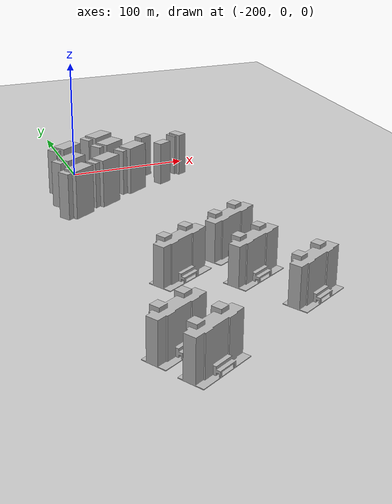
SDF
<sdf version="1.7">
 <world name="default">
  <model name="ground_plane">
   <static>1</static>
   <link name="link">
    <collision name="collision">
     <geometry><plane><normal>0 0 1</normal><size>100 100</size></plane></geometry>
     <surface><friction><ode><mu>100</mu><mu2>50</mu2></ode></friction></surface>
    </collision>
    <visual name="visual">
     <cast_shadows>0</cast_shadows>
     <geometry><plane><normal>0 0 1</normal><size>100 100</size></plane></geometry>
     <material>
      <script><uri>file://media/materials/scripts/gazebo.material</uri><name>Gazebo/Grey</name></script>
     </material>
    </visual>
   </link>
  </model>
  <model name="apartment0_0_clone">
   <static>1</static>
   <link name="link_0">
    <inertial>
     <mass>1</mass>
     <inertia>
      <ixx>0.166667</ixx>
      <ixy>0</ixy>
      <ixz>0</ixz>
      <iyy>0.166667</iyy>
      <iyz>0</iyz>
      <izz>0.166667</izz>
     </inertia>
    </inertial>
    <pose>0.000226 2e-06 0 0 -0 0</pose>
    <visual name="visual">
     <geometry>
      <mesh><uri>model://apartment0/scripts/apartment.dae</uri><scale>0.6 0.3 0.2</scale></mesh>
     </geometry>
     <material>
      <lighting>1</lighting>
      <script><uri>model://apartment0/scripts/building.jpg</uri><name>__default__</name></script>
      <shader type="pixel"/>
     </material>
    </visual>
    <collision name="collision">
     <geometry>
      <mesh><uri>model://apartment0/scripts/apartment.dae</uri><scale>0.6 0.3 0.2</scale></mesh>
     </geometry>
     <surface>
      <friction>
       <ode><mu>1</mu><mu2>1</mu2><fdir1>0 0 0</fdir1><slip1>0</slip1><slip2>0</slip2></ode>
       <torsional>
        <coefficient>1</coefficient>
        <patch_radius>0</patch_radius>
        <surface_radius>0</surface_radius>
        <use_patch_radius>1</use_patch_radius>
        <ode><slip>0</slip></ode>
       </torsional>
      </friction>
      <bounce><restitution_coefficient>0</restitution_coefficient><threshold>1e+06</threshold></bounce>
      <contact>
       <collide_without_contact>0</collide_without_contact>
       <collide_without_contact_bitmask>1</collide_without_contact_bitmask>
       <collide_bitmask>1</collide_bitmask>
       <ode>
        <soft_cfm>0</soft_cfm>
        <soft_erp>0.2</soft_erp>
        <kp>1e+13</kp>
        <kd>1</kd>
        <max_vel>0.01</max_vel>
        <min_depth>0</min_depth>
       </ode>
       <bullet>
        <split_impulse>1</split_impulse>
        <split_impulse_penetration_threshold>-0.01</split_impulse_penetration_threshold>
        <soft_cfm>0</soft_cfm>
        <soft_erp>0.2</soft_erp>
        <kp>1e+13</kp>
        <kd>1</kd>
       </bullet>
      </contact>
     </surface>
    </collision>
   </link>
   <static>0</static>
   <pose>-184.133 -215.894 1.01682 0 -0 0.518792</pose>
  </model>
  <model name="apartment0_0_clone_clone_clone_clone">
   <static>1</static>
   <link name="link_0">
    <inertial>
     <mass>1</mass>
     <inertia>
      <ixx>0.166667</ixx>
      <ixy>0</ixy>
      <ixz>0</ixz>
      <iyy>0.166667</iyy>
      <iyz>0</iyz>
      <izz>0.166667</izz>
     </inertia>
    </inertial>
    <pose>0.000226 2e-06 0 0 -0 0</pose>
    <visual name="visual">
     <geometry>
      <mesh><uri>model://apartment0/scripts/apartment.dae</uri><scale>0.6 0.3 0.2</scale></mesh>
     </geometry>
     <material>
      <lighting>1</lighting>
      <script><uri>model://apartment0/scripts/building.jpg</uri><name>__default__</name></script>
      <shader type="pixel"/>
     </material>
    </visual>
    <collision name="collision">
     <geometry>
      <mesh><uri>model://apartment0/scripts/apartment.dae</uri><scale>0.6 0.3 0.2</scale></mesh>
     </geometry>
     <surface>
      <friction>
       <ode><mu>1</mu><mu2>1</mu2><fdir1>0 0 0</fdir1><slip1>0</slip1><slip2>0</slip2></ode>
       <torsional>
        <coefficient>1</coefficient>
        <patch_radius>0</patch_radius>
        <surface_radius>0</surface_radius>
        <use_patch_radius>1</use_patch_radius>
        <ode><slip>0</slip></ode>
       </torsional>
      </friction>
      <bounce><restitution_coefficient>0</restitution_coefficient><threshold>1e+06</threshold></bounce>
      <contact>
       <collide_without_contact>0</collide_without_contact>
       <collide_without_contact_bitmask>1</collide_without_contact_bitmask>
       <collide_bitmask>1</collide_bitmask>
       <ode>
        <soft_cfm>0</soft_cfm>
        <soft_erp>0.2</soft_erp>
        <kp>1e+13</kp>
        <kd>1</kd>
        <max_vel>0.01</max_vel>
        <min_depth>0</min_depth>
       </ode>
       <bullet>
        <split_impulse>1</split_impulse>
        <split_impulse_penetration_threshold>-0.01</split_impulse_penetration_threshold>
        <soft_cfm>0</soft_cfm>
        <soft_erp>0.2</soft_erp>
        <kp>1e+13</kp>
        <kd>1</kd>
       </bullet>
      </contact>
     </surface>
    </collision>
   </link>
   <static>0</static>
   <pose>-112.725 -273.503 1.01682 0 -0 0.510126</pose>
  </model>
  <model name="apartment1_1_clone_clone_2_clone_5">
   <static>1</static>
   <link name="link_0">
    <inertial>
     <mass>1</mass>
     <inertia>
      <ixx>0.166667</ixx>
      <ixy>0</ixy>
      <ixz>0</ixz>
      <iyy>0.166667</iyy>
      <iyz>0</iyz>
      <izz>0.166667</izz>
     </inertia>
    </inertial>
    <pose>1e-06 -0 0 0 -0 0</pose>
    <visual name="visual">
     <geometry>
      <mesh><uri>model://apartment1/scripts/apartment1.dae</uri><scale>0.2 0.2 0.3</scale></mesh>
     </geometry>
     <material>
      <lighting>1</lighting>
      <script><uri>model://apartment1/scripts/apartment1.jpg</uri><name>__default__</name></script>
      <shader type="pixel"/>
     </material>
    </visual>
    <collision name="collision">
     <geometry>
      <mesh><uri>model://apartment1/scripts/apartment1.dae</uri><scale>0.2 0.2 0.3</scale></mesh>
     </geometry>
     <surface>
      <friction>
       <ode><mu>1</mu><mu2>1</mu2><fdir1>0 0 0</fdir1><slip1>0</slip1><slip2>0</slip2></ode>
       <torsional>
        <coefficient>1</coefficient>
        <patch_radius>0</patch_radius>
        <surface_radius>0</surface_radius>
        <use_patch_radius>1</use_patch_radius>
        <ode><slip>0</slip></ode>
       </torsional>
      </friction>
      <bounce><restitution_coefficient>0</restitution_coefficient><threshold>1e+06</threshold></bounce>
      <contact>
       <collide_without_contact>0</collide_without_contact>
       <collide_without_contact_bitmask>1</collide_without_contact_bitmask>
       <collide_bitmask>1</collide_bitmask>
       <ode>
        <soft_cfm>0</soft_cfm>
        <soft_erp>0.2</soft_erp>
        <kp>1e+13</kp>
        <kd>1</kd>
        <max_vel>0.01</max_vel>
        <min_depth>0</min_depth>
       </ode>
       <bullet>
        <split_impulse>1</split_impulse>
        <split_impulse_penetration_threshold>-0.01</split_impulse_penetration_threshold>
        <soft_cfm>0</soft_cfm>
        <soft_erp>0.2</soft_erp>
        <kp>1e+13</kp>
        <kd>1</kd>
       </bullet>
      </contact>
     </surface>
    </collision>
   </link>
   <static>0</static>
   <pose>-112.648 -24.5191 0 0 -0 0.45325</pose>
  </model>
  <model name="apartment1_1_clone_clone_2_clone_5_clone_4">
   <static>1</static>
   <link name="link_0">
    <inertial>
     <mass>1</mass>
     <inertia>
      <ixx>0.166667</ixx>
      <ixy>0</ixy>
      <ixz>0</ixz>
      <iyy>0.166667</iyy>
      <iyz>0</iyz>
      <izz>0.166667</izz>
     </inertia>
    </inertial>
    <pose>1e-06 -0 0 0 -0 0</pose>
    <visual name="visual">
     <geometry>
      <mesh><uri>model://apartment1/scripts/apartment1.dae</uri><scale>0.2 0.2 0.3</scale></mesh>
     </geometry>
     <material>
      <lighting>1</lighting>
      <script><uri>model://apartment1/scripts/apartment1.jpg</uri><name>__default__</name></script>
      <shader type="pixel"/>
     </material>
    </visual>
    <collision name="collision">
     <geometry>
      <mesh><uri>model://apartment1/scripts/apartment1.dae</uri><scale>0.2 0.2 0.3</scale></mesh>
     </geometry>
     <surface>
      <friction>
       <ode><mu>1</mu><mu2>1</mu2><fdir1>0 0 0</fdir1><slip1>0</slip1><slip2>0</slip2></ode>
       <torsional>
        <coefficient>1</coefficient>
        <patch_radius>0</patch_radius>
        <surface_radius>0</surface_radius>
        <use_patch_radius>1</use_patch_radius>
        <ode><slip>0</slip></ode>
       </torsional>
      </friction>
      <bounce><restitution_coefficient>0</restitution_coefficient><threshold>1e+06</threshold></bounce>
      <contact>
       <collide_without_contact>0</collide_without_contact>
       <collide_without_contact_bitmask>1</collide_without_contact_bitmask>
       <collide_bitmask>1</collide_bitmask>
       <ode>
        <soft_cfm>0</soft_cfm>
        <soft_erp>0.2</soft_erp>
        <kp>1e+13</kp>
        <kd>1</kd>
        <max_vel>0.01</max_vel>
        <min_depth>0</min_depth>
       </ode>
       <bullet>
        <split_impulse>1</split_impulse>
        <split_impulse_penetration_threshold>-0.01</split_impulse_penetration_threshold>
        <soft_cfm>0</soft_cfm>
        <soft_erp>0.2</soft_erp>
        <kp>1e+13</kp>
        <kd>1</kd>
       </bullet>
      </contact>
     </surface>
    </collision>
   </link>
   <static>0</static>
   <pose>-133.18 -41.7639 0 0 0 -1.07862</pose>
  </model>
  <model name="apartment1_1_clone_clone_2_clone_5_clone_4_clone">
   <static>1</static>
   <link name="link_0">
    <inertial>
     <mass>1</mass>
     <inertia>
      <ixx>0.166667</ixx>
      <ixy>0</ixy>
      <ixz>0</ixz>
      <iyy>0.166667</iyy>
      <iyz>0</iyz>
      <izz>0.166667</izz>
     </inertia>
    </inertial>
    <pose>1e-06 -0 0 0 -0 0</pose>
    <visual name="visual">
     <geometry>
      <mesh><uri>model://apartment1/scripts/apartment1.dae</uri><scale>0.2 0.2 0.3</scale></mesh>
     </geometry>
     <material>
      <lighting>1</lighting>
      <script><uri>model://apartment1/scripts/apartment1.jpg</uri><name>__default__</name></script>
      <shader type="pixel"/>
     </material>
    </visual>
    <collision name="collision">
     <geometry>
      <mesh><uri>model://apartment1/scripts/apartment1.dae</uri><scale>0.2 0.2 0.3</scale></mesh>
     </geometry>
     <surface>
      <friction>
       <ode><mu>1</mu><mu2>1</mu2><fdir1>0 0 0</fdir1><slip1>0</slip1><slip2>0</slip2></ode>
       <torsional>
        <coefficient>1</coefficient>
        <patch_radius>0</patch_radius>
        <surface_radius>0</surface_radius>
        <use_patch_radius>1</use_patch_radius>
        <ode><slip>0</slip></ode>
       </torsional>
      </friction>
      <bounce><restitution_coefficient>0</restitution_coefficient><threshold>1e+06</threshold></bounce>
      <contact>
       <collide_without_contact>0</collide_without_contact>
       <collide_without_contact_bitmask>1</collide_without_contact_bitmask>
       <collide_bitmask>1</collide_bitmask>
       <ode>
        <soft_cfm>0</soft_cfm>
        <soft_erp>0.2</soft_erp>
        <kp>1e+13</kp>
        <kd>1</kd>
        <max_vel>0.01</max_vel>
        <min_depth>0</min_depth>
       </ode>
       <bullet>
        <split_impulse>1</split_impulse>
        <split_impulse_penetration_threshold>-0.01</split_impulse_penetration_threshold>
        <soft_cfm>0</soft_cfm>
        <soft_erp>0.2</soft_erp>
        <kp>1e+13</kp>
        <kd>1</kd>
       </bullet>
      </contact>
     </surface>
    </collision>
   </link>
   <static>0</static>
   <pose>-143.198 -20.3441 0 0 0 -1.07862</pose>
  </model>
  <model name="apartment1_4_clone">
   <static>1</static>
   <link name="link_0">
    <inertial>
     <mass>1</mass>
     <inertia>
      <ixx>0.166667</ixx>
      <ixy>0</ixy>
      <ixz>0</ixz>
      <iyy>0.166667</iyy>
      <iyz>0</iyz>
      <izz>0.166667</izz>
     </inertia>
    </inertial>
    <pose>1e-06 -0 0 0 -0 0</pose>
    <visual name="visual">
     <geometry>
      <mesh><uri>model://apartment1/scripts/apartment1.dae</uri><scale>0.5 0.2 0.33</scale></mesh>
     </geometry>
     <material>
      <lighting>1</lighting>
      <script><uri>model://apartment1/scripts/apartment1.jpg</uri><name>__default__</name></script>
      <shader type="pixel"/>
     </material>
    </visual>
    <collision name="collision">
     <geometry>
      <mesh><uri>model://apartment1/scripts/apartment1.dae</uri><scale>0.5 0.2 0.33</scale></mesh>
     </geometry>
     <surface>
      <friction>
       <ode><mu>1</mu><mu2>1</mu2><fdir1>0 0 0</fdir1><slip1>0</slip1><slip2>0</slip2></ode>
       <torsional>
        <coefficient>1</coefficient>
        <patch_radius>0</patch_radius>
        <surface_radius>0</surface_radius>
        <use_patch_radius>1</use_patch_radius>
        <ode><slip>0</slip></ode>
       </torsional>
      </friction>
      <bounce><restitution_coefficient>0</restitution_coefficient><threshold>1e+06</threshold></bounce>
      <contact>
       <collide_without_contact>0</collide_without_contact>
       <collide_without_contact_bitmask>1</collide_without_contact_bitmask>
       <collide_bitmask>1</collide_bitmask>
       <ode>
        <soft_cfm>0</soft_cfm>
        <soft_erp>0.2</soft_erp>
        <kp>1e+13</kp>
        <kd>1</kd>
        <max_vel>0.01</max_vel>
        <min_depth>0</min_depth>
       </ode>
       <bullet>
        <split_impulse>1</split_impulse>
        <split_impulse_penetration_threshold>-0.01</split_impulse_penetration_threshold>
        <soft_cfm>0</soft_cfm>
        <soft_erp>0.2</soft_erp>
        <kp>1e+13</kp>
        <kd>1</kd>
       </bullet>
      </contact>
     </surface>
    </collision>
   </link>
   <static>0</static>
   <pose>-191.923 -69.8876 0 0 -0 0.56104</pose>
  </model>
  <model name="apartment1_4_clone_0">
   <static>1</static>
   <link name="link_0">
    <inertial>
     <mass>1</mass>
     <inertia>
      <ixx>0.166667</ixx>
      <ixy>0</ixy>
      <ixz>0</ixz>
      <iyy>0.166667</iyy>
      <iyz>0</iyz>
      <izz>0.166667</izz>
     </inertia>
    </inertial>
    <pose>1e-06 -0 0 0 -0 0</pose>
    <visual name="visual">
     <geometry>
      <mesh><uri>model://apartment1/scripts/apartment1.dae</uri><scale>0.5 0.2 0.33</scale></mesh>
     </geometry>
     <material>
      <lighting>1</lighting>
      <script><uri>model://apartment1/scripts/apartment1.jpg</uri><name>__default__</name></script>
      <shader type="pixel"/>
     </material>
    </visual>
    <collision name="collision">
     <geometry>
      <mesh><uri>model://apartment1/scripts/apartment1.dae</uri><scale>0.5 0.2 0.33</scale></mesh>
     </geometry>
     <surface>
      <friction>
       <ode><mu>1</mu><mu2>1</mu2><fdir1>0 0 0</fdir1><slip1>0</slip1><slip2>0</slip2></ode>
       <torsional>
        <coefficient>1</coefficient>
        <patch_radius>0</patch_radius>
        <surface_radius>0</surface_radius>
        <use_patch_radius>1</use_patch_radius>
        <ode><slip>0</slip></ode>
       </torsional>
      </friction>
      <bounce><restitution_coefficient>0</restitution_coefficient><threshold>1e+06</threshold></bounce>
      <contact>
       <collide_without_contact>0</collide_without_contact>
       <collide_without_contact_bitmask>1</collide_without_contact_bitmask>
       <collide_bitmask>1</collide_bitmask>
       <ode>
        <soft_cfm>0</soft_cfm>
        <soft_erp>0.2</soft_erp>
        <kp>1e+13</kp>
        <kd>1</kd>
        <max_vel>0.01</max_vel>
        <min_depth>0</min_depth>
       </ode>
       <bullet>
        <split_impulse>1</split_impulse>
        <split_impulse_penetration_threshold>-0.01</split_impulse_penetration_threshold>
        <soft_cfm>0</soft_cfm>
        <soft_erp>0.2</soft_erp>
        <kp>1e+13</kp>
        <kd>1</kd>
       </bullet>
      </contact>
     </surface>
    </collision>
   </link>
   <static>0</static>
   <pose>-218.678 -86.1765 0 0 -0 0.56104</pose>
  </model>
  <model name="apartment1_4_clone_3">
   <static>1</static>
   <link name="link_0">
    <inertial>
     <mass>1</mass>
     <inertia>
      <ixx>0.166667</ixx>
      <ixy>0</ixy>
      <ixz>0</ixz>
      <iyy>0.166667</iyy>
      <iyz>0</iyz>
      <izz>0.166667</izz>
     </inertia>
    </inertial>
    <pose>1e-06 -0 0 0 -0 0</pose>
    <visual name="visual">
     <geometry>
      <mesh><uri>model://apartment1/scripts/apartment1.dae</uri><scale>0.5 0.2 0.33</scale></mesh>
     </geometry>
     <material>
      <lighting>1</lighting>
      <script><uri>model://apartment1/scripts/apartment1.jpg</uri><name>__default__</name></script>
      <shader type="pixel"/>
     </material>
    </visual>
    <collision name="collision">
     <geometry>
      <mesh><uri>model://apartment1/scripts/apartment1.dae</uri><scale>0.5 0.2 0.33</scale></mesh>
     </geometry>
     <surface>
      <friction>
       <ode><mu>1</mu><mu2>1</mu2><fdir1>0 0 0</fdir1><slip1>0</slip1><slip2>0</slip2></ode>
       <torsional>
        <coefficient>1</coefficient>
        <patch_radius>0</patch_radius>
        <surface_radius>0</surface_radius>
        <use_patch_radius>1</use_patch_radius>
        <ode><slip>0</slip></ode>
       </torsional>
      </friction>
      <bounce><restitution_coefficient>0</restitution_coefficient><threshold>1e+06</threshold></bounce>
      <contact>
       <collide_without_contact>0</collide_without_contact>
       <collide_without_contact_bitmask>1</collide_without_contact_bitmask>
       <collide_bitmask>1</collide_bitmask>
       <ode>
        <soft_cfm>0</soft_cfm>
        <soft_erp>0.2</soft_erp>
        <kp>1e+13</kp>
        <kd>1</kd>
        <max_vel>0.01</max_vel>
        <min_depth>0</min_depth>
       </ode>
       <bullet>
        <split_impulse>1</split_impulse>
        <split_impulse_penetration_threshold>-0.01</split_impulse_penetration_threshold>
        <soft_cfm>0</soft_cfm>
        <soft_erp>0.2</soft_erp>
        <kp>1e+13</kp>
        <kd>1</kd>
       </bullet>
      </contact>
     </surface>
    </collision>
   </link>
   <static>0</static>
   <pose>-217.836 -60.77 0 0 -0 0.56104</pose>
  </model>
  <model name="apartment1_4_clone_5">
   <static>1</static>
   <link name="link_0">
    <inertial>
     <mass>1</mass>
     <inertia>
      <ixx>0.166667</ixx>
      <ixy>0</ixy>
      <ixz>0</ixz>
      <iyy>0.166667</iyy>
      <iyz>0</iyz>
      <izz>0.166667</izz>
     </inertia>
    </inertial>
    <pose>1e-06 -0 0 0 -0 0</pose>
    <visual name="visual">
     <geometry>
      <mesh><uri>model://apartment1/scripts/apartment1.dae</uri><scale>0.5 0.2 0.33</scale></mesh>
     </geometry>
     <material>
      <lighting>1</lighting>
      <script><uri>model://apartment1/scripts/apartment1.jpg</uri><name>__default__</name></script>
      <shader type="pixel"/>
     </material>
    </visual>
    <collision name="collision">
     <geometry>
      <mesh><uri>model://apartment1/scripts/apartment1.dae</uri><scale>0.5 0.2 0.33</scale></mesh>
     </geometry>
     <surface>
      <friction>
       <ode><mu>1</mu><mu2>1</mu2><fdir1>0 0 0</fdir1><slip1>0</slip1><slip2>0</slip2></ode>
       <torsional>
        <coefficient>1</coefficient>
        <patch_radius>0</patch_radius>
        <surface_radius>0</surface_radius>
        <use_patch_radius>1</use_patch_radius>
        <ode><slip>0</slip></ode>
       </torsional>
      </friction>
      <bounce><restitution_coefficient>0</restitution_coefficient><threshold>1e+06</threshold></bounce>
      <contact>
       <collide_without_contact>0</collide_without_contact>
       <collide_without_contact_bitmask>1</collide_without_contact_bitmask>
       <collide_bitmask>1</collide_bitmask>
       <ode>
        <soft_cfm>0</soft_cfm>
        <soft_erp>0.2</soft_erp>
        <kp>1e+13</kp>
        <kd>1</kd>
        <max_vel>0.01</max_vel>
        <min_depth>0</min_depth>
       </ode>
       <bullet>
        <split_impulse>1</split_impulse>
        <split_impulse_penetration_threshold>-0.01</split_impulse_penetration_threshold>
        <soft_cfm>0</soft_cfm>
        <soft_erp>0.2</soft_erp>
        <kp>1e+13</kp>
        <kd>1</kd>
       </bullet>
      </contact>
     </surface>
    </collision>
   </link>
   <static>0</static>
   <pose>-177.878 -34.3062 0 0 -0 0.56104</pose>
  </model>
  <model name="apartment1_4_clone_12">
   <static>1</static>
   <link name="link_0">
    <inertial>
     <mass>1</mass>
     <inertia>
      <ixx>0.166667</ixx>
      <ixy>0</ixy>
      <ixz>0</ixz>
      <iyy>0.166667</iyy>
      <iyz>0</iyz>
      <izz>0.166667</izz>
     </inertia>
    </inertial>
    <pose>1e-06 -0 0 0 -0 0</pose>
    <visual name="visual">
     <geometry>
      <mesh><uri>model://apartment1/scripts/apartment1.dae</uri><scale>0.5 0.2 0.33</scale></mesh>
     </geometry>
     <material>
      <lighting>1</lighting>
      <script><uri>model://apartment1/scripts/apartment1.jpg</uri><name>__default__</name></script>
      <shader type="pixel"/>
     </material>
    </visual>
    <collision name="collision">
     <geometry>
      <mesh><uri>model://apartment1/scripts/apartment1.dae</uri><scale>0.5 0.2 0.33</scale></mesh>
     </geometry>
     <surface>
      <friction>
       <ode><mu>1</mu><mu2>1</mu2><fdir1>0 0 0</fdir1><slip1>0</slip1><slip2>0</slip2></ode>
       <torsional>
        <coefficient>1</coefficient>
        <patch_radius>0</patch_radius>
        <surface_radius>0</surface_radius>
        <use_patch_radius>1</use_patch_radius>
        <ode><slip>0</slip></ode>
       </torsional>
      </friction>
      <bounce><restitution_coefficient>0</restitution_coefficient><threshold>1e+06</threshold></bounce>
      <contact>
       <collide_without_contact>0</collide_without_contact>
       <collide_without_contact_bitmask>1</collide_without_contact_bitmask>
       <collide_bitmask>1</collide_bitmask>
       <ode>
        <soft_cfm>0</soft_cfm>
        <soft_erp>0.2</soft_erp>
        <kp>1e+13</kp>
        <kd>1</kd>
        <max_vel>0.01</max_vel>
        <min_depth>0</min_depth>
       </ode>
       <bullet>
        <split_impulse>1</split_impulse>
        <split_impulse_penetration_threshold>-0.01</split_impulse_penetration_threshold>
        <soft_cfm>0</soft_cfm>
        <soft_erp>0.2</soft_erp>
        <kp>1e+13</kp>
        <kd>1</kd>
       </bullet>
      </contact>
     </surface>
    </collision>
   </link>
   <static>0</static>
   <pose>-181.211 -13.7348 0 0 -0 0.56104</pose>
  </model>
  <model name="apartment1_4_clone_13">
   <static>1</static>
   <link name="link_0">
    <inertial>
     <mass>1</mass>
     <inertia>
      <ixx>0.166667</ixx>
      <ixy>0</ixy>
      <ixz>0</ixz>
      <iyy>0.166667</iyy>
      <iyz>0</iyz>
      <izz>0.166667</izz>
     </inertia>
    </inertial>
    <pose>1e-06 -0 0 0 -0 0</pose>
    <visual name="visual">
     <geometry>
      <mesh><uri>model://apartment1/scripts/apartment1.dae</uri><scale>0.5 0.2 0.33</scale></mesh>
     </geometry>
     <material>
      <lighting>1</lighting>
      <script><uri>model://apartment1/scripts/apartment1.jpg</uri><name>__default__</name></script>
      <shader type="pixel"/>
     </material>
    </visual>
    <collision name="collision">
     <geometry>
      <mesh><uri>model://apartment1/scripts/apartment1.dae</uri><scale>0.5 0.2 0.33</scale></mesh>
     </geometry>
     <surface>
      <friction>
       <ode><mu>1</mu><mu2>1</mu2><fdir1>0 0 0</fdir1><slip1>0</slip1><slip2>0</slip2></ode>
       <torsional>
        <coefficient>1</coefficient>
        <patch_radius>0</patch_radius>
        <surface_radius>0</surface_radius>
        <use_patch_radius>1</use_patch_radius>
        <ode><slip>0</slip></ode>
       </torsional>
      </friction>
      <bounce><restitution_coefficient>0</restitution_coefficient><threshold>1e+06</threshold></bounce>
      <contact>
       <collide_without_contact>0</collide_without_contact>
       <collide_without_contact_bitmask>1</collide_without_contact_bitmask>
       <collide_bitmask>1</collide_bitmask>
       <ode>
        <soft_cfm>0</soft_cfm>
        <soft_erp>0.2</soft_erp>
        <kp>1e+13</kp>
        <kd>1</kd>
        <max_vel>0.01</max_vel>
        <min_depth>0</min_depth>
       </ode>
       <bullet>
        <split_impulse>1</split_impulse>
        <split_impulse_penetration_threshold>-0.01</split_impulse_penetration_threshold>
        <soft_cfm>0</soft_cfm>
        <soft_erp>0.2</soft_erp>
        <kp>1e+13</kp>
        <kd>1</kd>
       </bullet>
      </contact>
     </surface>
    </collision>
   </link>
   <static>0</static>
   <pose>-214.05 -32.4503 0 0 -0 0.56104</pose>
  </model>
  <model name="apartment1_4_clone_clone">
   <static>1</static>
   <link name="link_0">
    <inertial>
     <mass>1</mass>
     <inertia>
      <ixx>0.166667</ixx>
      <ixy>0</ixy>
      <ixz>0</ixz>
      <iyy>0.166667</iyy>
      <iyz>0</iyz>
      <izz>0.166667</izz>
     </inertia>
    </inertial>
    <pose>1e-06 -0 0 0 -0 0</pose>
    <visual name="visual">
     <geometry>
      <mesh><uri>model://apartment1/scripts/apartment1.dae</uri><scale>0.5 0.2 0.33</scale></mesh>
     </geometry>
     <material>
      <lighting>1</lighting>
      <script><uri>model://apartment1/scripts/apartment1.jpg</uri><name>__default__</name></script>
      <shader type="pixel"/>
     </material>
    </visual>
    <collision name="collision">
     <geometry>
      <mesh><uri>model://apartment1/scripts/apartment1.dae</uri><scale>0.5 0.2 0.33</scale></mesh>
     </geometry>
     <surface>
      <friction>
       <ode><mu>1</mu><mu2>1</mu2><fdir1>0 0 0</fdir1><slip1>0</slip1><slip2>0</slip2></ode>
       <torsional>
        <coefficient>1</coefficient>
        <patch_radius>0</patch_radius>
        <surface_radius>0</surface_radius>
        <use_patch_radius>1</use_patch_radius>
        <ode><slip>0</slip></ode>
       </torsional>
      </friction>
      <bounce><restitution_coefficient>0</restitution_coefficient><threshold>1e+06</threshold></bounce>
      <contact>
       <collide_without_contact>0</collide_without_contact>
       <collide_without_contact_bitmask>1</collide_without_contact_bitmask>
       <collide_bitmask>1</collide_bitmask>
       <ode>
        <soft_cfm>0</soft_cfm>
        <soft_erp>0.2</soft_erp>
        <kp>1e+13</kp>
        <kd>1</kd>
        <max_vel>0.01</max_vel>
        <min_depth>0</min_depth>
       </ode>
       <bullet>
        <split_impulse>1</split_impulse>
        <split_impulse_penetration_threshold>-0.01</split_impulse_penetration_threshold>
        <soft_cfm>0</soft_cfm>
        <soft_erp>0.2</soft_erp>
        <kp>1e+13</kp>
        <kd>1</kd>
       </bullet>
      </contact>
     </surface>
    </collision>
   </link>
   <static>0</static>
   <pose>-162.531 -50.0084 0 0 -0 0.56104</pose>
  </model>
  <model name="apartment0_0_clone_clone_clone_clone_clone">
   <static>1</static>
   <link name="link_0">
    <inertial>
     <mass>1</mass>
     <inertia>
      <ixx>0.166667</ixx>
      <ixy>0</ixy>
      <ixz>0</ixz>
      <iyy>0.166667</iyy>
      <iyz>0</iyz>
      <izz>0.166667</izz>
     </inertia>
    </inertial>
    <pose>0.000226 2e-06 0 0 -0 0</pose>
    <visual name="visual">
     <geometry>
      <mesh><uri>model://apartment0/scripts/apartment.dae</uri><scale>0.6 0.3 0.2</scale></mesh>
     </geometry>
     <material>
      <lighting>1</lighting>
      <script><uri>model://apartment0/scripts/building.jpg</uri><name>__default__</name></script>
      <shader type="pixel"/>
     </material>
    </visual>
    <collision name="collision">
     <geometry>
      <mesh><uri>model://apartment0/scripts/apartment.dae</uri><scale>0.6 0.3 0.2</scale></mesh>
     </geometry>
     <surface>
      <friction>
       <ode><mu>1</mu><mu2>1</mu2><fdir1>0 0 0</fdir1><slip1>0</slip1><slip2>0</slip2></ode>
       <torsional>
        <coefficient>1</coefficient>
        <patch_radius>0</patch_radius>
        <surface_radius>0</surface_radius>
        <use_patch_radius>1</use_patch_radius>
        <ode><slip>0</slip></ode>
       </torsional>
      </friction>
      <bounce><restitution_coefficient>0</restitution_coefficient><threshold>1e+06</threshold></bounce>
      <contact>
       <collide_without_contact>0</collide_without_contact>
       <collide_without_contact_bitmask>1</collide_without_contact_bitmask>
       <collide_bitmask>1</collide_bitmask>
       <ode>
        <soft_cfm>0</soft_cfm>
        <soft_erp>0.2</soft_erp>
        <kp>1e+13</kp>
        <kd>1</kd>
        <max_vel>0.01</max_vel>
        <min_depth>0</min_depth>
       </ode>
       <bullet>
        <split_impulse>1</split_impulse>
        <split_impulse_penetration_threshold>-0.01</split_impulse_penetration_threshold>
        <soft_cfm>0</soft_cfm>
        <soft_erp>0.2</soft_erp>
        <kp>1e+13</kp>
        <kd>1</kd>
       </bullet>
      </contact>
     </surface>
    </collision>
   </link>
   <static>0</static>
   <pose>-136.908 -233.009 1.01682 0 -0 0.510126</pose>
  </model>
  <model name="apartment0_0_clone_clone_clone_clone_clone_0">
   <static>1</static>
   <link name="link_0">
    <inertial>
     <mass>1</mass>
     <inertia>
      <ixx>0.166667</ixx>
      <ixy>0</ixy>
      <ixz>0</ixz>
      <iyy>0.166667</iyy>
      <iyz>0</iyz>
      <izz>0.166667</izz>
     </inertia>
    </inertial>
    <pose>0.000226 2e-06 0 0 -0 0</pose>
    <visual name="visual">
     <geometry>
      <mesh><uri>model://apartment0/scripts/apartment.dae</uri><scale>0.6 0.3 0.2</scale></mesh>
     </geometry>
     <material>
      <lighting>1</lighting>
      <script><uri>model://apartment0/scripts/building.jpg</uri><name>__default__</name></script>
      <shader type="pixel"/>
     </material>
    </visual>
    <collision name="collision">
     <geometry>
      <mesh><uri>model://apartment0/scripts/apartment.dae</uri><scale>0.6 0.3 0.2</scale></mesh>
     </geometry>
     <surface>
      <friction>
       <ode><mu>1</mu><mu2>1</mu2><fdir1>0 0 0</fdir1><slip1>0</slip1><slip2>0</slip2></ode>
       <torsional>
        <coefficient>1</coefficient>
        <patch_radius>0</patch_radius>
        <surface_radius>0</surface_radius>
        <use_patch_radius>1</use_patch_radius>
        <ode><slip>0</slip></ode>
       </torsional>
      </friction>
      <bounce><restitution_coefficient>0</restitution_coefficient><threshold>1e+06</threshold></bounce>
      <contact>
       <collide_without_contact>0</collide_without_contact>
       <collide_without_contact_bitmask>1</collide_without_contact_bitmask>
       <collide_bitmask>1</collide_bitmask>
       <ode>
        <soft_cfm>0</soft_cfm>
        <soft_erp>0.2</soft_erp>
        <kp>1e+13</kp>
        <kd>1</kd>
        <max_vel>0.01</max_vel>
        <min_depth>0</min_depth>
       </ode>
       <bullet>
        <split_impulse>1</split_impulse>
        <split_impulse_penetration_threshold>-0.01</split_impulse_penetration_threshold>
        <soft_cfm>0</soft_cfm>
        <soft_erp>0.2</soft_erp>
        <kp>1e+13</kp>
        <kd>1</kd>
       </bullet>
      </contact>
     </surface>
    </collision>
   </link>
   <static>0</static>
   <pose>-136.919 -192.079 1.01682 0 -0 0.510126</pose>
  </model>
  <model name="apartment0_0_clone_clone_5">
   <static>1</static>
   <link name="link_0">
    <inertial>
     <mass>1</mass>
     <inertia>
      <ixx>0.166667</ixx>
      <ixy>0</ixy>
      <ixz>0</ixz>
      <iyy>0.166667</iyy>
      <iyz>0</iyz>
      <izz>0.166667</izz>
     </inertia>
    </inertial>
    <pose>0.000226 2e-06 0 0 -0 0</pose>
    <visual name="visual">
     <geometry>
      <mesh><uri>model://apartment0/scripts/apartment.dae</uri><scale>0.6 0.3 0.2</scale></mesh>
     </geometry>
     <material>
      <lighting>1</lighting>
      <script><uri>model://apartment0/scripts/building.jpg</uri><name>__default__</name></script>
      <shader type="pixel"/>
     </material>
    </visual>
    <collision name="collision">
     <geometry>
      <mesh><uri>model://apartment0/scripts/apartment.dae</uri><scale>0.6 0.3 0.2</scale></mesh>
     </geometry>
     <surface>
      <friction>
       <ode><mu>1</mu><mu2>1</mu2><fdir1>0 0 0</fdir1><slip1>0</slip1><slip2>0</slip2></ode>
       <torsional>
        <coefficient>1</coefficient>
        <patch_radius>0</patch_radius>
        <surface_radius>0</surface_radius>
        <use_patch_radius>1</use_patch_radius>
        <ode><slip>0</slip></ode>
       </torsional>
      </friction>
      <bounce><restitution_coefficient>0</restitution_coefficient><threshold>1e+06</threshold></bounce>
      <contact>
       <collide_without_contact>0</collide_without_contact>
       <collide_without_contact_bitmask>1</collide_without_contact_bitmask>
       <collide_bitmask>1</collide_bitmask>
       <ode>
        <soft_cfm>0</soft_cfm>
        <soft_erp>0.2</soft_erp>
        <kp>1e+13</kp>
        <kd>1</kd>
        <max_vel>0.01</max_vel>
        <min_depth>0</min_depth>
       </ode>
       <bullet>
        <split_impulse>1</split_impulse>
        <split_impulse_penetration_threshold>-0.01</split_impulse_penetration_threshold>
        <soft_cfm>0</soft_cfm>
        <soft_erp>0.2</soft_erp>
        <kp>1e+13</kp>
        <kd>1</kd>
       </bullet>
      </contact>
     </surface>
    </collision>
   </link>
   <static>0</static>
   <pose>-220.363 -304.787 1.01682 0 -0 0.518792</pose>
  </model>
  <model name="apartment0_0_clone_clone_7">
   <static>1</static>
   <link name="link_0">
    <inertial>
     <mass>1</mass>
     <inertia>
      <ixx>0.166667</ixx>
      <ixy>0</ixy>
      <ixz>0</ixz>
      <iyy>0.166667</iyy>
      <iyz>0</iyz>
      <izz>0.166667</izz>
     </inertia>
    </inertial>
    <pose>0.000226 2e-06 0 0 -0 0</pose>
    <visual name="visual">
     <geometry>
      <mesh><uri>model://apartment0/scripts/apartment.dae</uri><scale>0.6 0.3 0.2</scale></mesh>
     </geometry>
     <material>
      <lighting>1</lighting>
      <script><uri>model://apartment0/scripts/building.jpg</uri><name>__default__</name></script>
      <shader type="pixel"/>
     </material>
    </visual>
    <collision name="collision">
     <geometry>
      <mesh><uri>model://apartment0/scripts/apartment.dae</uri><scale>0.6 0.3 0.2</scale></mesh>
     </geometry>
     <surface>
      <friction>
       <ode><mu>1</mu><mu2>1</mu2><fdir1>0 0 0</fdir1><slip1>0</slip1><slip2>0</slip2></ode>
       <torsional>
        <coefficient>1</coefficient>
        <patch_radius>0</patch_radius>
        <surface_radius>0</surface_radius>
        <use_patch_radius>1</use_patch_radius>
        <ode><slip>0</slip></ode>
       </torsional>
      </friction>
      <bounce><restitution_coefficient>0</restitution_coefficient><threshold>1e+06</threshold></bounce>
      <contact>
       <collide_without_contact>0</collide_without_contact>
       <collide_without_contact_bitmask>1</collide_without_contact_bitmask>
       <collide_bitmask>1</collide_bitmask>
       <ode>
        <soft_cfm>0</soft_cfm>
        <soft_erp>0.2</soft_erp>
        <kp>1e+13</kp>
        <kd>1</kd>
        <max_vel>0.01</max_vel>
        <min_depth>0</min_depth>
       </ode>
       <bullet>
        <split_impulse>1</split_impulse>
        <split_impulse_penetration_threshold>-0.01</split_impulse_penetration_threshold>
        <soft_cfm>0</soft_cfm>
        <soft_erp>0.2</soft_erp>
        <kp>1e+13</kp>
        <kd>1</kd>
       </bullet>
      </contact>
     </surface>
    </collision>
   </link>
   <static>0</static>
   <pose>-207.397 -329.984 1.01682 0 -0 0.518792</pose>
  </model>
 </world>
</sdf>
